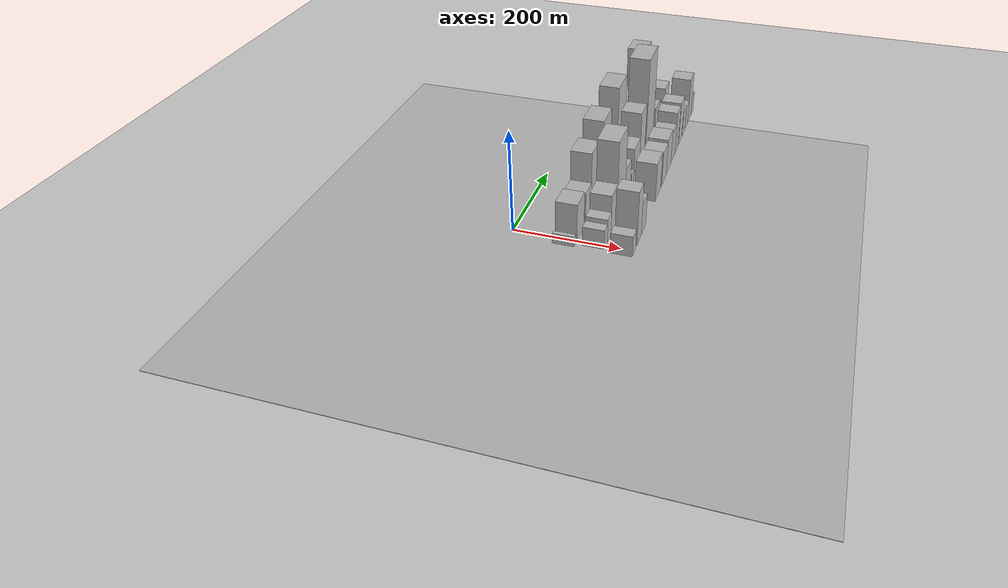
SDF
<sdf version="1.6">
 <world name="default">
  <include><name>ground_plane_1</name><uri>model://HANNAS_ground_plane</uri></include>
  <include>
   <name>ground_plane_2</name>
   <uri>model://HANNAS_ground_plane</uri>
   <pose>100 0 0  0 0 0</pose>
  </include>
  <model name="building_16">
   <static>1</static>
   <pose>100.0000 -14.3181 0 0.000000 0.000000 0.000000</pose>
   <link name="link">
    <pose>0 0 10.50 0 0 0</pose>
    <collision name="collision"><geometry><box><size>40.0000 8.8434 21.0000</size></box></geometry></collision>
    <visual name="visual">
     <cast_shadows>0</cast_shadows>
     <geometry><box><size>40.0000 8.8434 21.0000</size></box></geometry>
     <material>
      <script>
       <uri>model://HANNAS_wall/materials/scripts</uri>
       <uri>model://HANNAS_wall/materials/textures</uri>
       <name>vrc/HANNAS_wall</name>
      </script>
     </material>
    </visual>
   </link>
  </model>
  <model name="building_17">
   <static>1</static>
   <pose>100.0000 22.5195 0 0.000000 0.000000 0.000000</pose>
   <link name="link">
    <pose>0 0 37.50 0 0 0</pose>
    <collision name="collision"><geometry><box><size>40.0000 44.8317 75.0000</size></box></geometry></collision>
    <visual name="visual">
     <cast_shadows>0</cast_shadows>
     <geometry><box><size>40.0000 44.8317 75.0000</size></box></geometry>
     <material>
      <script>
       <uri>model://HANNAS_wall/materials/scripts</uri>
       <uri>model://HANNAS_wall/materials/textures</uri>
       <name>vrc/HANNAS_wall</name>
      </script>
     </material>
    </visual>
   </link>
  </model>
  <model name="building_18">
   <static>1</static>
   <pose>100.0000 72.0414 0 0.000000 0.000000 0.000000</pose>
   <link name="link">
    <pose>0 0 33.00 0 0 0</pose>
    <collision name="collision"><geometry><box><size>40.0000 38.2121 66.0000</size></box></geometry></collision>
    <visual name="visual">
     <cast_shadows>0</cast_shadows>
     <geometry><box><size>40.0000 38.2121 66.0000</size></box></geometry>
     <material>
      <script>
       <uri>model://HANNAS_wall/materials/scripts</uri>
       <uri>model://HANNAS_wall/materials/textures</uri>
       <name>vrc/HANNAS_wall</name>
      </script>
     </material>
    </visual>
   </link>
  </model>
  <model name="building_19">
   <static>1</static>
   <pose>100.0000 116.2036 0 0.000000 0.000000 0.000000</pose>
   <link name="link">
    <pose>0 0 63.00 0 0 0</pose>
    <collision name="collision"><geometry><box><size>40.0000 50.1124 126.0000</size></box></geometry></collision>
    <visual name="visual">
     <cast_shadows>0</cast_shadows>
     <geometry><box><size>40.0000 50.1124 126.0000</size></box></geometry>
     <material>
      <script>
       <uri>model://HANNAS_wall/materials/scripts</uri>
       <uri>model://HANNAS_wall/materials/textures</uri>
       <name>vrc/HANNAS_wall</name>
      </script>
     </material>
    </visual>
   </link>
  </model>
  <model name="building_20">
   <static>1</static>
   <pose>100.0000 155.5497 0 0.000000 0.000000 0.000000</pose>
   <link name="link">
    <pose>0 0 28.50 0 0 0</pose>
    <collision name="collision"><geometry><box><size>40.0000 28.5797 57.0000</size></box></geometry></collision>
    <visual name="visual">
     <cast_shadows>0</cast_shadows>
     <geometry><box><size>40.0000 28.5797 57.0000</size></box></geometry>
     <material>
      <script>
       <uri>model://HANNAS_wall/materials/scripts</uri>
       <uri>model://HANNAS_wall/materials/textures</uri>
       <name>vrc/HANNAS_wall</name>
      </script>
     </material>
    </visual>
   </link>
  </model>
  <model name="building_21">
   <static>1</static>
   <pose>100.0000 198.1445 0 0.000000 0.000000 0.000000</pose>
   <link name="link">
    <pose>0 0 75.00 0 0 0</pose>
    <collision name="collision"><geometry><box><size>40.0000 56.6098 150.0000</size></box></geometry></collision>
    <visual name="visual">
     <cast_shadows>0</cast_shadows>
     <geometry><box><size>40.0000 56.6098 150.0000</size></box></geometry>
     <material>
      <script>
       <uri>model://HANNAS_wall/materials/scripts</uri>
       <uri>model://HANNAS_wall/materials/textures</uri>
       <name>vrc/HANNAS_wall</name>
      </script>
     </material>
    </visual>
   </link>
  </model>
  <model name="building_22">
   <static>1</static>
   <pose>100.0000 236.2842 0 0.000000 0.000000 0.000000</pose>
   <link name="link">
    <pose>0 0 19.50 0 0 0</pose>
    <collision name="collision"><geometry><box><size>40.0000 19.6696 39.0000</size></box></geometry></collision>
    <visual name="visual">
     <cast_shadows>0</cast_shadows>
     <geometry><box><size>40.0000 19.6696 39.0000</size></box></geometry>
     <material>
      <script>
       <uri>model://HANNAS_wall/materials/scripts</uri>
       <uri>model://HANNAS_wall/materials/textures</uri>
       <name>vrc/HANNAS_wall</name>
      </script>
     </material>
    </visual>
   </link>
  </model>
  <model name="building_23">
   <static>1</static>
   <pose>100.0000 256.1067 0 0.000000 0.000000 0.000000</pose>
   <link name="link">
    <pose>0 0 18.00 0 0 0</pose>
    <collision name="collision"><geometry><box><size>40.0000 19.9755 36.0000</size></box></geometry></collision>
    <visual name="visual">
     <cast_shadows>0</cast_shadows>
     <geometry><box><size>40.0000 19.9755 36.0000</size></box></geometry>
     <material>
      <script>
       <uri>model://HANNAS_wall/materials/scripts</uri>
       <uri>model://HANNAS_wall/materials/textures</uri>
       <name>vrc/HANNAS_wall</name>
      </script>
     </material>
    </visual>
   </link>
  </model>
  <model name="building_24">
   <static>1</static>
   <pose>100.0000 269.6287 0 0.000000 0.000000 0.000000</pose>
   <link name="link">
    <pose>0 0 7.50 0 0 0</pose>
    <collision name="collision"><geometry><box><size>40.0000 7.0686 15.0000</size></box></geometry></collision>
    <visual name="visual">
     <cast_shadows>0</cast_shadows>
     <geometry><box><size>40.0000 7.0686 15.0000</size></box></geometry>
     <material>
      <script>
       <uri>model://HANNAS_wall/materials/scripts</uri>
       <uri>model://HANNAS_wall/materials/textures</uri>
       <name>vrc/HANNAS_wall</name>
      </script>
     </material>
    </visual>
   </link>
  </model>
  <model name="building_25">
   <static>1</static>
   <pose>100.0000 312.3558 0 0.000000 0.000000 0.000000</pose>
   <link name="link">
    <pose>0 0 82.50 0 0 0</pose>
    <collision name="collision"><geometry><box><size>40.0000 62.3855 165.0000</size></box></geometry></collision>
    <visual name="visual">
     <cast_shadows>0</cast_shadows>
     <geometry><box><size>40.0000 62.3855 165.0000</size></box></geometry>
     <material>
      <script>
       <uri>model://HANNAS_wall/materials/scripts</uri>
       <uri>model://HANNAS_wall/materials/textures</uri>
       <name>vrc/HANNAS_wall</name>
      </script>
     </material>
    </visual>
   </link>
  </model>
  <model name="building_26">
   <static>1</static>
   <pose>100.0000 363.2936 0 0.000000 0.000000 0.000000</pose>
   <link name="link">
    <pose>0 0 49.50 0 0 0</pose>
    <collision name="collision"><geometry><box><size>40.0000 33.4901 99.0000</size></box></geometry></collision>
    <visual name="visual">
     <cast_shadows>0</cast_shadows>
     <geometry><box><size>40.0000 33.4901 99.0000</size></box></geometry>
     <material>
      <script>
       <uri>model://HANNAS_wall/materials/scripts</uri>
       <uri>model://HANNAS_wall/materials/textures</uri>
       <name>vrc/HANNAS_wall</name>
      </script>
     </material>
    </visual>
   </link>
  </model>
  <model name="building_27">
   <static>1</static>
   <pose>100.0000 414.3053 0 0.000000 0.000000 0.000000</pose>
   <link name="link">
    <pose>0 0 43.50 0 0 0</pose>
    <collision name="collision"><geometry><box><size>40.0000 48.5332 87.0000</size></box></geometry></collision>
    <visual name="visual">
     <cast_shadows>0</cast_shadows>
     <geometry><box><size>40.0000 48.5332 87.0000</size></box></geometry>
     <material>
      <script>
       <uri>model://HANNAS_wall/materials/scripts</uri>
       <uri>model://HANNAS_wall/materials/textures</uri>
       <name>vrc/HANNAS_wall</name>
      </script>
     </material>
    </visual>
   </link>
  </model>
  <model name="building_28">
   <static>1</static>
   <pose>100.0000 454.1151 0 0.000000 0.000000 0.000000</pose>
   <link name="link">
    <pose>0 0 27.00 0 0 0</pose>
    <collision name="collision"><geometry><box><size>40.0000 31.0865 54.0000</size></box></geometry></collision>
    <visual name="visual">
     <cast_shadows>0</cast_shadows>
     <geometry><box><size>40.0000 31.0865 54.0000</size></box></geometry>
     <material>
      <script>
       <uri>model://HANNAS_wall/materials/scripts</uri>
       <uri>model://HANNAS_wall/materials/textures</uri>
       <name>vrc/HANNAS_wall</name>
      </script>
     </material>
    </visual>
   </link>
  </model>
  <model name="building_29">
   <static>1</static>
   <pose>100.0000 495.5309 0 0.000000 0.000000 0.000000</pose>
   <link name="link">
    <pose>0 0 28.50 0 0 0</pose>
    <collision name="collision"><geometry><box><size>40.0000 31.7450 57.0000</size></box></geometry></collision>
    <visual name="visual">
     <cast_shadows>0</cast_shadows>
     <geometry><box><size>40.0000 31.7450 57.0000</size></box></geometry>
     <material>
      <script>
       <uri>model://HANNAS_wall/materials/scripts</uri>
       <uri>model://HANNAS_wall/materials/textures</uri>
       <name>vrc/HANNAS_wall</name>
      </script>
     </material>
    </visual>
   </link>
  </model>
  <model name="building_30">
   <static>1</static>
   <pose>100.0000 540.2542 0 0.000000 0.000000 0.000000</pose>
   <link name="link">
    <pose>0 0 72.00 0 0 0</pose>
    <collision name="collision"><geometry><box><size>40.0000 49.7016 144.0000</size></box></geometry></collision>
    <visual name="visual">
     <cast_shadows>0</cast_shadows>
     <geometry><box><size>40.0000 49.7016 144.0000</size></box></geometry>
     <material>
      <script>
       <uri>model://HANNAS_wall/materials/scripts</uri>
       <uri>model://HANNAS_wall/materials/textures</uri>
       <name>vrc/HANNAS_wall</name>
      </script>
     </material>
    </visual>
   </link>
  </model>
  <model name="building_44">
   <static>1</static>
   <pose>152.0000 -0.0204 0 0.000000 0.000000 0.000000</pose>
   <link name="link">
    <pose>0 0 19.50 0 0 0</pose>
    <collision name="collision"><geometry><box><size>40.0000 20.4511 39.0000</size></box></geometry></collision>
    <visual name="visual">
     <cast_shadows>0</cast_shadows>
     <geometry><box><size>40.0000 20.4511 39.0000</size></box></geometry>
     <material>
      <script>
       <uri>model://HANNAS_wall/materials/scripts</uri>
       <uri>model://HANNAS_wall/materials/textures</uri>
       <name>vrc/HANNAS_wall</name>
      </script>
     </material>
    </visual>
   </link>
  </model>
  <model name="building_45">
   <static>1</static>
   <pose>152.0000 23.0759 0 0.000000 0.000000 0.000000</pose>
   <link name="link">
    <pose>0 0 24.00 0 0 0</pose>
    <collision name="collision"><geometry><box><size>40.0000 25.7415 48.0000</size></box></geometry></collision>
    <visual name="visual">
     <cast_shadows>0</cast_shadows>
     <geometry><box><size>40.0000 25.7415 48.0000</size></box></geometry>
     <material>
      <script>
       <uri>model://HANNAS_wall/materials/scripts</uri>
       <uri>model://HANNAS_wall/materials/textures</uri>
       <name>vrc/HANNAS_wall</name>
      </script>
     </material>
    </visual>
   </link>
  </model>
  <model name="building_46">
   <static>1</static>
   <pose>152.0000 57.0108 0 0.000000 0.000000 0.000000</pose>
   <link name="link">
    <pose>0 0 40.50 0 0 0</pose>
    <collision name="collision"><geometry><box><size>40.0000 42.1283 81.0000</size></box></geometry></collision>
    <visual name="visual">
     <cast_shadows>0</cast_shadows>
     <geometry><box><size>40.0000 42.1283 81.0000</size></box></geometry>
     <material>
      <script>
       <uri>model://HANNAS_wall/materials/scripts</uri>
       <uri>model://HANNAS_wall/materials/textures</uri>
       <name>vrc/HANNAS_wall</name>
      </script>
     </material>
    </visual>
   </link>
  </model>
  <model name="building_47">
   <static>1</static>
   <pose>152.0000 108.1943 0 0.000000 0.000000 0.000000</pose>
   <link name="link">
    <pose>0 0 82.50 0 0 0</pose>
    <collision name="collision"><geometry><box><size>40.0000 60.2388 165.0000</size></box></geometry></collision>
    <visual name="visual">
     <cast_shadows>0</cast_shadows>
     <geometry><box><size>40.0000 60.2388 165.0000</size></box></geometry>
     <material>
      <script>
       <uri>model://HANNAS_wall/materials/scripts</uri>
       <uri>model://HANNAS_wall/materials/textures</uri>
       <name>vrc/HANNAS_wall</name>
      </script>
     </material>
    </visual>
   </link>
  </model>
  <model name="building_48">
   <static>1</static>
   <pose>152.0000 158.9577 0 0.000000 0.000000 0.000000</pose>
   <link name="link">
    <pose>0 0 37.50 0 0 0</pose>
    <collision name="collision"><geometry><box><size>40.0000 41.2879 75.0000</size></box></geometry></collision>
    <visual name="visual">
     <cast_shadows>0</cast_shadows>
     <geometry><box><size>40.0000 41.2879 75.0000</size></box></geometry>
     <material>
      <script>
       <uri>model://HANNAS_wall/materials/scripts</uri>
       <uri>model://HANNAS_wall/materials/textures</uri>
       <name>vrc/HANNAS_wall</name>
      </script>
     </material>
    </visual>
   </link>
  </model>
  <model name="building_49">
   <static>1</static>
   <pose>152.0000 196.6775 0 0.000000 0.000000 0.000000</pose>
   <link name="link">
    <pose>0 0 18.00 0 0 0</pose>
    <collision name="collision"><geometry><box><size>40.0000 18.1518 36.0000</size></box></geometry></collision>
    <visual name="visual">
     <cast_shadows>0</cast_shadows>
     <geometry><box><size>40.0000 18.1518 36.0000</size></box></geometry>
     <material>
      <script>
       <uri>model://HANNAS_wall/materials/scripts</uri>
       <uri>model://HANNAS_wall/materials/textures</uri>
       <name>vrc/HANNAS_wall</name>
      </script>
     </material>
    </visual>
   </link>
  </model>
  <model name="building_50">
   <static>1</static>
   <pose>152.0000 229.4871 0 0.000000 0.000000 0.000000</pose>
   <link name="link">
    <pose>0 0 40.50 0 0 0</pose>
    <collision name="collision"><geometry><box><size>40.0000 47.4674 81.0000</size></box></geometry></collision>
    <visual name="visual">
     <cast_shadows>0</cast_shadows>
     <geometry><box><size>40.0000 47.4674 81.0000</size></box></geometry>
     <material>
      <script>
       <uri>model://HANNAS_wall/materials/scripts</uri>
       <uri>model://HANNAS_wall/materials/textures</uri>
       <name>vrc/HANNAS_wall</name>
      </script>
     </material>
    </visual>
   </link>
  </model>
  <model name="building_51">
   <static>1</static>
   <pose>152.0000 274.8759 0 0.000000 0.000000 0.000000</pose>
   <link name="link">
    <pose>0 0 66.00 0 0 0</pose>
    <collision name="collision"><geometry><box><size>40.0000 43.3102 132.0000</size></box></geometry></collision>
    <visual name="visual">
     <cast_shadows>0</cast_shadows>
     <geometry><box><size>40.0000 43.3102 132.0000</size></box></geometry>
     <material>
      <script>
       <uri>model://HANNAS_wall/materials/scripts</uri>
       <uri>model://HANNAS_wall/materials/textures</uri>
       <name>vrc/HANNAS_wall</name>
      </script>
     </material>
    </visual>
   </link>
  </model>
  <model name="building_52">
   <static>1</static>
   <pose>152.0000 301.0048 0 0.000000 0.000000 0.000000</pose>
   <link name="link">
    <pose>0 0 9.00 0 0 0</pose>
    <collision name="collision"><geometry><box><size>40.0000 8.9475 18.0000</size></box></geometry></collision>
    <visual name="visual">
     <cast_shadows>0</cast_shadows>
     <geometry><box><size>40.0000 8.9475 18.0000</size></box></geometry>
     <material>
      <script>
       <uri>model://HANNAS_wall/materials/scripts</uri>
       <uri>model://HANNAS_wall/materials/textures</uri>
       <name>vrc/HANNAS_wall</name>
      </script>
     </material>
    </visual>
   </link>
  </model>
  <model name="building_53">
   <static>1</static>
   <pose>152.0000 339.7961 0 0.000000 0.000000 0.000000</pose>
   <link name="link">
    <pose>0 0 109.50 0 0 0</pose>
    <collision name="collision"><geometry><box><size>40.0000 68.6351 219.0000</size></box></geometry></collision>
    <visual name="visual">
     <cast_shadows>0</cast_shadows>
     <geometry><box><size>40.0000 68.6351 219.0000</size></box></geometry>
     <material>
      <script>
       <uri>model://HANNAS_wall/materials/scripts</uri>
       <uri>model://HANNAS_wall/materials/textures</uri>
       <name>vrc/HANNAS_wall</name>
      </script>
     </material>
    </visual>
   </link>
  </model>
  <model name="building_54">
   <static>1</static>
   <pose>152.0000 380.0673 0 0.000000 0.000000 0.000000</pose>
   <link name="link">
    <pose>0 0 13.50 0 0 0</pose>
    <collision name="collision"><geometry><box><size>40.0000 11.9073 27.0000</size></box></geometry></collision>
    <visual name="visual">
     <cast_shadows>0</cast_shadows>
     <geometry><box><size>40.0000 11.9073 27.0000</size></box></geometry>
     <material>
      <script>
       <uri>model://HANNAS_wall/materials/scripts</uri>
       <uri>model://HANNAS_wall/materials/textures</uri>
       <name>vrc/HANNAS_wall</name>
      </script>
     </material>
    </visual>
   </link>
  </model>
  <model name="building_55">
   <static>1</static>
   <pose>152.0000 410.9445 0 0.000000 0.000000 0.000000</pose>
   <link name="link">
    <pose>0 0 37.50 0 0 0</pose>
    <collision name="collision"><geometry><box><size>40.0000 41.8471 75.0000</size></box></geometry></collision>
    <visual name="visual">
     <cast_shadows>0</cast_shadows>
     <geometry><box><size>40.0000 41.8471 75.0000</size></box></geometry>
     <material>
      <script>
       <uri>model://HANNAS_wall/materials/scripts</uri>
       <uri>model://HANNAS_wall/materials/textures</uri>
       <name>vrc/HANNAS_wall</name>
      </script>
     </material>
    </visual>
   </link>
  </model>
  <model name="building_56">
   <static>1</static>
   <pose>152.0000 447.8825 0 0.000000 0.000000 0.000000</pose>
   <link name="link">
    <pose>0 0 27.00 0 0 0</pose>
    <collision name="collision"><geometry><box><size>40.0000 32.0290 54.0000</size></box></geometry></collision>
    <visual name="visual">
     <cast_shadows>0</cast_shadows>
     <geometry><box><size>40.0000 32.0290 54.0000</size></box></geometry>
     <material>
      <script>
       <uri>model://HANNAS_wall/materials/scripts</uri>
       <uri>model://HANNAS_wall/materials/textures</uri>
       <name>vrc/HANNAS_wall</name>
      </script>
     </material>
    </visual>
   </link>
  </model>
  <model name="building_57">
   <static>1</static>
   <pose>152.0000 472.6197 0 0.000000 0.000000 0.000000</pose>
   <link name="link">
    <pose>0 0 16.50 0 0 0</pose>
    <collision name="collision"><geometry><box><size>40.0000 17.4455 33.0000</size></box></geometry></collision>
    <visual name="visual">
     <cast_shadows>0</cast_shadows>
     <geometry><box><size>40.0000 17.4455 33.0000</size></box></geometry>
     <material>
      <script>
       <uri>model://HANNAS_wall/materials/scripts</uri>
       <uri>model://HANNAS_wall/materials/textures</uri>
       <name>vrc/HANNAS_wall</name>
      </script>
     </material>
    </visual>
   </link>
  </model>
  <model name="building_58">
   <static>1</static>
   <pose>152.0000 505.5870 0 0.000000 0.000000 0.000000</pose>
   <link name="link">
    <pose>0 0 37.50 0 0 0</pose>
    <collision name="collision"><geometry><box><size>40.0000 40.4890 75.0000</size></box></geometry></collision>
    <visual name="visual">
     <cast_shadows>0</cast_shadows>
     <geometry><box><size>40.0000 40.4890 75.0000</size></box></geometry>
     <material>
      <script>
       <uri>model://HANNAS_wall/materials/scripts</uri>
       <uri>model://HANNAS_wall/materials/textures</uri>
       <name>vrc/HANNAS_wall</name>
      </script>
     </material>
    </visual>
   </link>
  </model>
  <model name="building_59">
   <static>1</static>
   <pose>152.0000 539.6128 0 0.000000 0.000000 0.000000</pose>
   <link name="link">
    <pose>0 0 15.00 0 0 0</pose>
    <collision name="collision"><geometry><box><size>40.0000 17.5625 30.0000</size></box></geometry></collision>
    <visual name="visual">
     <cast_shadows>0</cast_shadows>
     <geometry><box><size>40.0000 17.5625 30.0000</size></box></geometry>
     <material>
      <script>
       <uri>model://HANNAS_wall/materials/scripts</uri>
       <uri>model://HANNAS_wall/materials/textures</uri>
       <name>vrc/HANNAS_wall</name>
      </script>
     </material>
    </visual>
   </link>
  </model>
  <model name="building_76">
   <static>1</static>
   <pose>204.0000 -5.5008 0 0.000000 0.000000 0.000000</pose>
   <link name="link">
    <pose>0 0 21.00 0 0 0</pose>
    <collision name="collision"><geometry><box><size>40.0000 24.3536 42.0000</size></box></geometry></collision>
    <visual name="visual">
     <cast_shadows>0</cast_shadows>
     <geometry><box><size>40.0000 24.3536 42.0000</size></box></geometry>
     <material>
      <script>
       <uri>model://HANNAS_wall/materials/scripts</uri>
       <uri>model://HANNAS_wall/materials/textures</uri>
       <name>vrc/HANNAS_wall</name>
      </script>
     </material>
    </visual>
   </link>
  </model>
  <model name="building_77">
   <static>1</static>
   <pose>204.0000 32.3693 0 0.000000 0.000000 0.000000</pose>
   <link name="link">
    <pose>0 0 55.50 0 0 0</pose>
    <collision name="collision"><geometry><box><size>40.0000 33.3866 111.0000</size></box></geometry></collision>
    <visual name="visual">
     <cast_shadows>0</cast_shadows>
     <geometry><box><size>40.0000 33.3866 111.0000</size></box></geometry>
     <material>
      <script>
       <uri>model://HANNAS_wall/materials/scripts</uri>
       <uri>model://HANNAS_wall/materials/textures</uri>
       <name>vrc/HANNAS_wall</name>
      </script>
     </material>
    </visual>
   </link>
  </model>
  <model name="building_78">
   <static>1</static>
   <pose>204.0000 67.3168 0 0.000000 0.000000 0.000000</pose>
   <link name="link">
    <pose>0 0 33.00 0 0 0</pose>
    <collision name="collision"><geometry><box><size>40.0000 36.5084 66.0000</size></box></geometry></collision>
    <visual name="visual">
     <cast_shadows>0</cast_shadows>
     <geometry><box><size>40.0000 36.5084 66.0000</size></box></geometry>
     <material>
      <script>
       <uri>model://HANNAS_wall/materials/scripts</uri>
       <uri>model://HANNAS_wall/materials/textures</uri>
       <name>vrc/HANNAS_wall</name>
      </script>
     </material>
    </visual>
   </link>
  </model>
  <model name="building_79">
   <static>1</static>
   <pose>204.0000 188.1586 0 0.000000 0.000000 0.000000</pose>
   <link name="link">
    <pose>0 0 40.50 0 0 0</pose>
    <collision name="collision"><geometry><box><size>40.0000 47.7251 81.0000</size></box></geometry></collision>
    <visual name="visual">
     <cast_shadows>0</cast_shadows>
     <geometry><box><size>40.0000 47.7251 81.0000</size></box></geometry>
     <material>
      <script>
       <uri>model://HANNAS_wall/materials/scripts</uri>
       <uri>model://HANNAS_wall/materials/textures</uri>
       <name>vrc/HANNAS_wall</name>
      </script>
     </material>
    </visual>
   </link>
  </model>
  <model name="building_80">
   <static>1</static>
   <pose>204.0000 242.1628 0 0.000000 0.000000 0.000000</pose>
   <link name="link">
    <pose>0 0 36.00 0 0 0</pose>
    <collision name="collision"><geometry><box><size>40.0000 42.2833 72.0000</size></box></geometry></collision>
    <visual name="visual">
     <cast_shadows>0</cast_shadows>
     <geometry><box><size>40.0000 42.2833 72.0000</size></box></geometry>
     <material>
      <script>
       <uri>model://HANNAS_wall/materials/scripts</uri>
       <uri>model://HANNAS_wall/materials/textures</uri>
       <name>vrc/HANNAS_wall</name>
      </script>
     </material>
    </visual>
   </link>
  </model>
  <model name="building_81">
   <static>1</static>
   <pose>204.0000 286.3610 0 0.000000 0.000000 0.000000</pose>
   <link name="link">
    <pose>0 0 39.00 0 0 0</pose>
    <collision name="collision"><geometry><box><size>40.0000 46.1131 78.0000</size></box></geometry></collision>
    <visual name="visual">
     <cast_shadows>0</cast_shadows>
     <geometry><box><size>40.0000 46.1131 78.0000</size></box></geometry>
     <material>
      <script>
       <uri>model://HANNAS_wall/materials/scripts</uri>
       <uri>model://HANNAS_wall/materials/textures</uri>
       <name>vrc/HANNAS_wall</name>
      </script>
     </material>
    </visual>
   </link>
  </model>
  <model name="building_82">
   <static>1</static>
   <pose>204.0000 329.6056 0 0.000000 0.000000 0.000000</pose>
   <link name="link">
    <pose>0 0 34.50 0 0 0</pose>
    <collision name="collision"><geometry><box><size>40.0000 40.3760 69.0000</size></box></geometry></collision>
    <visual name="visual">
     <cast_shadows>0</cast_shadows>
     <geometry><box><size>40.0000 40.3760 69.0000</size></box></geometry>
     <material>
      <script>
       <uri>model://HANNAS_wall/materials/scripts</uri>
       <uri>model://HANNAS_wall/materials/textures</uri>
       <name>vrc/HANNAS_wall</name>
      </script>
     </material>
    </visual>
   </link>
  </model>
  <model name="building_83">
   <static>1</static>
   <pose>204.0000 366.1708 0 0.000000 0.000000 0.000000</pose>
   <link name="link">
    <pose>0 0 46.50 0 0 0</pose>
    <collision name="collision"><geometry><box><size>40.0000 32.7544 93.0000</size></box></geometry></collision>
    <visual name="visual">
     <cast_shadows>0</cast_shadows>
     <geometry><box><size>40.0000 32.7544 93.0000</size></box></geometry>
     <material>
      <script>
       <uri>model://HANNAS_wall/materials/scripts</uri>
       <uri>model://HANNAS_wall/materials/textures</uri>
       <name>vrc/HANNAS_wall</name>
      </script>
     </material>
    </visual>
   </link>
  </model>
  <model name="building_84">
   <static>1</static>
   <pose>204.0000 404.6485 0 0.000000 0.000000 0.000000</pose>
   <link name="link">
    <pose>0 0 48.00 0 0 0</pose>
    <collision name="collision"><geometry><box><size>40.0000 36.2011 96.0000</size></box></geometry></collision>
    <visual name="visual">
     <cast_shadows>0</cast_shadows>
     <geometry><box><size>40.0000 36.2011 96.0000</size></box></geometry>
     <material>
      <script>
       <uri>model://HANNAS_wall/materials/scripts</uri>
       <uri>model://HANNAS_wall/materials/textures</uri>
       <name>vrc/HANNAS_wall</name>
      </script>
     </material>
    </visual>
   </link>
  </model>
  <model name="building_85">
   <static>1</static>
   <pose>204.0000 442.1644 0 0.000000 0.000000 0.000000</pose>
   <link name="link">
    <pose>0 0 28.50 0 0 0</pose>
    <collision name="collision"><geometry><box><size>40.0000 30.8306 57.0000</size></box></geometry></collision>
    <visual name="visual">
     <cast_shadows>0</cast_shadows>
     <geometry><box><size>40.0000 30.8306 57.0000</size></box></geometry>
     <material>
      <script>
       <uri>model://HANNAS_wall/materials/scripts</uri>
       <uri>model://HANNAS_wall/materials/textures</uri>
       <name>vrc/HANNAS_wall</name>
      </script>
     </material>
    </visual>
   </link>
  </model>
  <model name="building_86">
   <static>1</static>
   <pose>204.0000 472.3916 0 0.000000 0.000000 0.000000</pose>
   <link name="link">
    <pose>0 0 27.00 0 0 0</pose>
    <collision name="collision"><geometry><box><size>40.0000 29.6239 54.0000</size></box></geometry></collision>
    <visual name="visual">
     <cast_shadows>0</cast_shadows>
     <geometry><box><size>40.0000 29.6239 54.0000</size></box></geometry>
     <material>
      <script>
       <uri>model://HANNAS_wall/materials/scripts</uri>
       <uri>model://HANNAS_wall/materials/textures</uri>
       <name>vrc/HANNAS_wall</name>
      </script>
     </material>
    </visual>
   </link>
  </model>
  <model name="building_87">
   <static>1</static>
   <pose>204.0000 506.2944 0 0.000000 0.000000 0.000000</pose>
   <link name="link">
    <pose>0 0 51.00 0 0 0</pose>
    <collision name="collision"><geometry><box><size>40.0000 38.1817 102.0000</size></box></geometry></collision>
    <visual name="visual">
     <cast_shadows>0</cast_shadows>
     <geometry><box><size>40.0000 38.1817 102.0000</size></box></geometry>
     <material>
      <script>
       <uri>model://HANNAS_wall/materials/scripts</uri>
       <uri>model://HANNAS_wall/materials/textures</uri>
       <name>vrc/HANNAS_wall</name>
      </script>
     </material>
    </visual>
   </link>
  </model>
  <model name="building_88">
   <static>1</static>
   <pose>204.0000 538.5741 0 0.000000 0.000000 0.000000</pose>
   <link name="link">
    <pose>0 0 22.50 0 0 0</pose>
    <collision name="collision"><geometry><box><size>40.0000 26.3776 45.0000</size></box></geometry></collision>
    <visual name="visual">
     <cast_shadows>0</cast_shadows>
     <geometry><box><size>40.0000 26.3776 45.0000</size></box></geometry>
     <material>
      <script>
       <uri>model://HANNAS_wall/materials/scripts</uri>
       <uri>model://HANNAS_wall/materials/textures</uri>
       <name>vrc/HANNAS_wall</name>
      </script>
     </material>
    </visual>
   </link>
  </model>
 </world>
</sdf>
